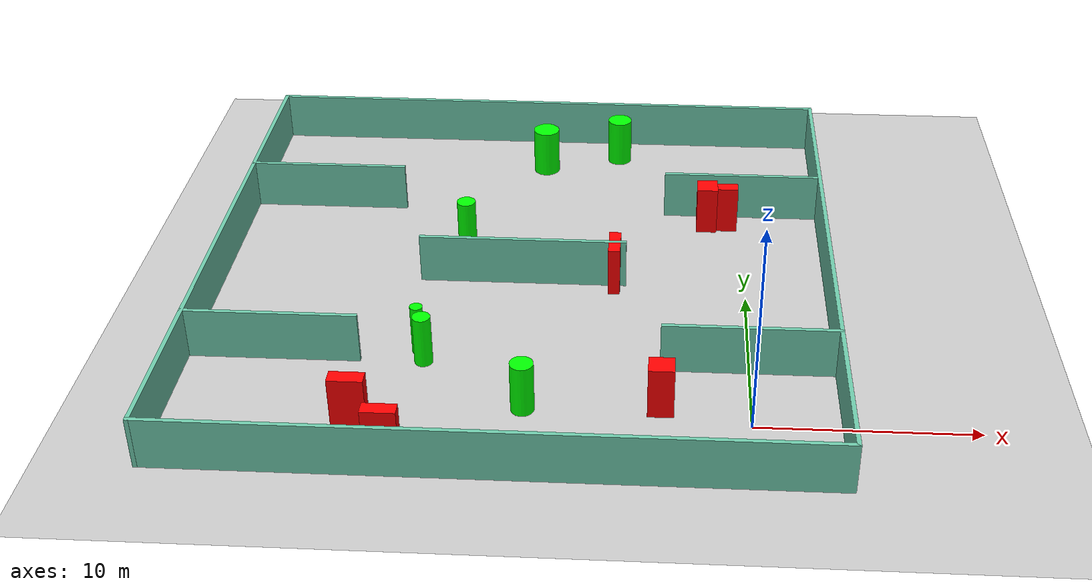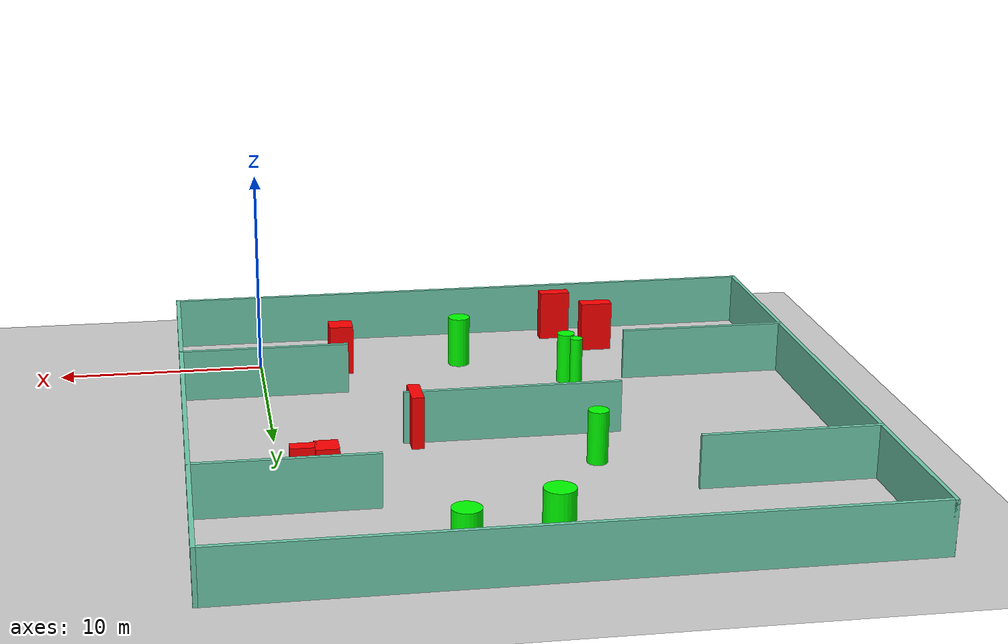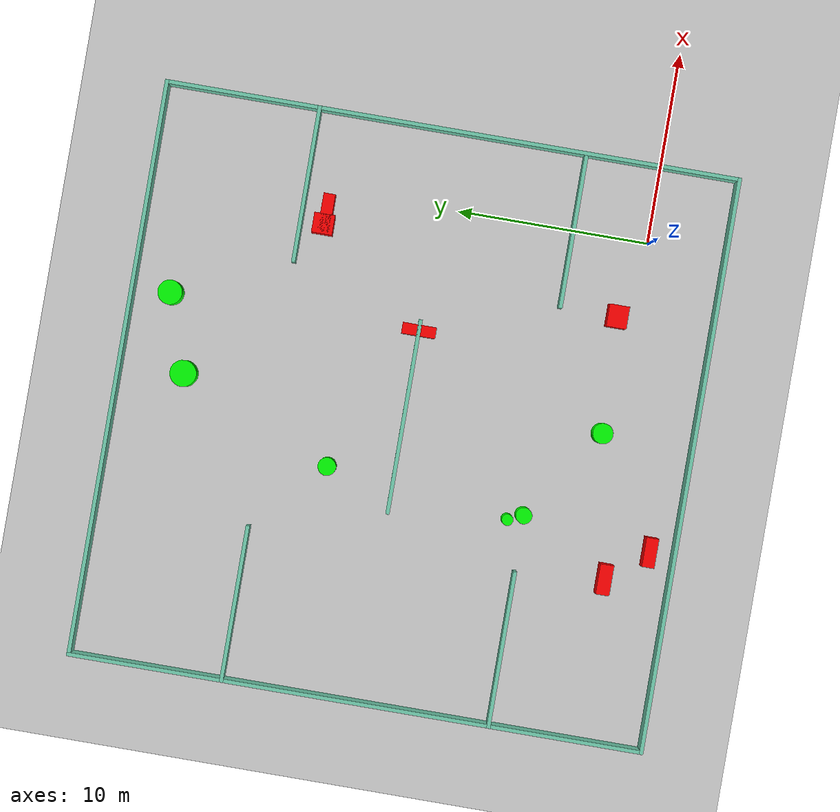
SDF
<sdf version="1.7">
 <world name="default">
  <light name="sun" type="directional">
   <pose>0 0 10 0 -0 0</pose>
   <diffuse>0.8 0.8 0.8 1</diffuse>
   <specular>0.2 0.2 0.2 1</specular>
   <attenuation>
    <range>1000</range>
    <constant>0.9</constant>
    <linear>0.01</linear>
    <quadratic>0.001</quadratic>
   </attenuation>
   <direction>-0.5 0.1 -0.9</direction>
   <spot><inner_angle>0</inner_angle><outer_angle>0</outer_angle><falloff>0</falloff></spot>
  </light>
  <model name="ground_plane">
   <static>1</static>
   <link name="link">
    <collision name="collision">
     <geometry><plane><normal>0 0 1</normal><size>100 100</size></plane></geometry>
     <surface>
      <contact><collide_bitmask>65535</collide_bitmask></contact>
      <friction><ode><mu>100</mu><mu2>50</mu2></ode></friction>
     </surface>
    </collision>
    <visual name="visual">
     <cast_shadows>0</cast_shadows>
     <geometry><plane><normal>0 0 1</normal><size>100 100</size></plane></geometry>
     <material>
      <script><uri>file://media/materials/scripts/gazebo.material</uri><name>Gazebo/Grey</name></script>
     </material>
    </visual>
   </link>
  </model>
  <gravity>0 0 -9.8</gravity>
  <magnetic_field>6e-06 2.3e-05 -4.2e-05</magnetic_field>
  <atmosphere type="adiabatic"/>
  <physics type="ode">
   <max_step_size>0.001</max_step_size>
   <real_time_factor>1</real_time_factor>
   <real_time_update_rate>1000</real_time_update_rate>
  </physics>
  <scene><ambient>0.4 0.4 0.4 1</ambient><background>0.7 0.7 0.7 1</background><shadows>1</shadows></scene>
  <spherical_coordinates>
   <surface_model>EARTH_WGS84</surface_model>
   <latitude_deg>0</latitude_deg>
   <longitude_deg>0</longitude_deg>
   <elevation>0</elevation>
   <heading_deg>0</heading_deg>
  </spherical_coordinates>
  <model name="my_base_walls">
   <link name="Wall_10">
    <collision name="Wall_10_Collision">
     <geometry><box><size>8.2 0.2 2.5</size></box></geometry>
     <pose>0 0 1.25 0 -0 0</pose>
    </collision>
    <visual name="Wall_10_Visual">
     <pose>0 0 1.25 0 -0 0</pose>
     <geometry><box><size>8.2 0.2 2.5</size></box></geometry>
     <material>
      <script><uri>file://media/materials/scripts/gazebo.material</uri><name>Gazebo/Grey</name></script>
      <ambient>0.435294 0.796078 0.67451 1</ambient>
     </material>
     <meta><layer>0</layer></meta>
    </visual>
    <pose>-11 -7 0 0 -0 0</pose>
   </link>
   <link name="Wall_12">
    <collision name="Wall_12_Collision">
     <geometry><box><size>8.2 0.2 2.5</size></box></geometry>
     <pose>0 0 1.25 0 -0 0</pose>
    </collision>
    <visual name="Wall_12_Visual">
     <pose>0 0 1.25 0 -0 0</pose>
     <geometry><box><size>8.2 0.2 2.5</size></box></geometry>
     <material>
      <script><uri>file://media/materials/scripts/gazebo.material</uri><name>Gazebo/Grey</name></script>
      <ambient>0.435294 0.796078 0.67451 1</ambient>
     </material>
     <meta><layer>0</layer></meta>
    </visual>
    <pose>-11 7 0 0 -0 0</pose>
   </link>
   <link name="Wall_14">
    <collision name="Wall_14_Collision">
     <geometry><box><size>8.2 0.2 2.5</size></box></geometry>
     <pose>0 0 1.25 0 -0 0</pose>
    </collision>
    <visual name="Wall_14_Visual">
     <pose>0 0 1.25 0 -0 0</pose>
     <geometry><box><size>8.2 0.2 2.5</size></box></geometry>
     <material>
      <script><uri>file://media/materials/scripts/gazebo.material</uri><name>Gazebo/Grey</name></script>
      <ambient>0.435294 0.796078 0.67451 1</ambient>
     </material>
     <meta><layer>0</layer></meta>
    </visual>
    <pose>11 7 0 0 -0 3.14159</pose>
   </link>
   <link name="Wall_16">
    <collision name="Wall_16_Collision">
     <geometry><box><size>10.2 0.2 2.5</size></box></geometry>
     <pose>0 0 1.25 0 -0 0</pose>
    </collision>
    <visual name="Wall_16_Visual">
     <pose>0 0 1.25 0 -0 0</pose>
     <geometry><box><size>10.2 0.2 2.5</size></box></geometry>
     <material>
      <script><uri>file://media/materials/scripts/gazebo.material</uri><name>Gazebo/Grey</name></script>
      <ambient>0.435294 0.796078 0.67451 1</ambient>
     </material>
     <meta><layer>0</layer></meta>
    </visual>
    <pose>0 0 0 0 -0 3.14159</pose>
   </link>
   <link name="Wall_2">
    <collision name="Wall_2_Collision">
     <geometry><box><size>30.2 0.2 2.5</size></box></geometry>
     <pose>0 0 1.25 0 -0 0</pose>
    </collision>
    <visual name="Wall_2_Visual">
     <pose>0 0 1.25 0 -0 0</pose>
     <geometry><box><size>30.2 0.2 2.5</size></box></geometry>
     <material>
      <script><uri>file://media/materials/scripts/gazebo.material</uri><name>Gazebo/Grey</name></script>
      <ambient>0.435294 0.796078 0.67451 1</ambient>
     </material>
     <meta><layer>0</layer></meta>
    </visual>
    <pose>0 -15 0 0 -0 3.14159</pose>
   </link>
   <link name="Wall_3">
    <collision name="Wall_3_Collision">
     <geometry><box><size>30.2 0.2 2.5</size></box></geometry>
     <pose>0 0 1.25 0 -0 0</pose>
    </collision>
    <visual name="Wall_3_Visual">
     <pose>0 0 1.25 0 -0 0</pose>
     <geometry><box><size>30.2 0.2 2.5</size></box></geometry>
     <material>
      <script><uri>file://media/materials/scripts/gazebo.material</uri><name>Gazebo/Grey</name></script>
      <ambient>0.435294 0.796078 0.67451 1</ambient>
     </material>
     <meta><layer>0</layer></meta>
    </visual>
    <pose>-15 0 0 0 -0 1.5708</pose>
   </link>
   <link name="Wall_4">
    <collision name="Wall_4_Collision">
     <geometry><box><size>30.2 0.2 2.5</size></box></geometry>
     <pose>0 0 1.25 0 -0 0</pose>
    </collision>
    <visual name="Wall_4_Visual">
     <pose>0 0 1.25 0 -0 0</pose>
     <geometry><box><size>30.2 0.2 2.5</size></box></geometry>
     <material>
      <script><uri>file://media/materials/scripts/gazebo.material</uri><name>Gazebo/Grey</name></script>
      <ambient>0.435294 0.796078 0.67451 1</ambient>
     </material>
     <meta><layer>0</layer></meta>
    </visual>
    <pose>0 15 0 0 -0 0</pose>
   </link>
   <link name="Wall_6">
    <collision name="Wall_6_Collision">
     <geometry><box><size>30.2 0.2 2.5</size></box></geometry>
     <pose>0 0 1.25 0 -0 0</pose>
    </collision>
    <visual name="Wall_6_Visual">
     <pose>0 0 1.25 0 -0 0</pose>
     <geometry><box><size>30.2 0.2 2.5</size></box></geometry>
     <material>
      <script><uri>file://media/materials/scripts/gazebo.material</uri><name>Gazebo/Grey</name></script>
      <ambient>0.435294 0.796078 0.67451 1</ambient>
     </material>
     <meta><layer>0</layer></meta>
    </visual>
    <pose>15 0 0 0 -0 1.5708</pose>
   </link>
   <link name="Wall_8">
    <collision name="Wall_8_Collision">
     <geometry><box><size>8.2 0.2 2.5</size></box></geometry>
     <pose>0 0 1.25 0 -0 0</pose>
    </collision>
    <visual name="Wall_8_Visual">
     <pose>0 0 1.25 0 -0 0</pose>
     <geometry><box><size>8.2 0.2 2.5</size></box></geometry>
     <material>
      <script><uri>file://media/materials/scripts/gazebo.material</uri><name>Gazebo/Grey</name></script>
      <ambient>0.435294 0.796078 0.67451 1</ambient>
     </material>
     <meta><layer>0</layer></meta>
    </visual>
    <pose>11 -7 0 0 -0 3.14159</pose>
   </link>
   <static>1</static>
   <pose>-11 11 0 0 -0 0</pose>
  </model>
  <model name="cylinder1">
   <static>1</static>
   <link name="link">
    <inertial>
     <mass>1</mass>
     <inertia><ixx>0.5</ixx><ixy>0</ixy><ixz>0</ixz><iyy>0.5</iyy><iyz>0</iyz><izz>1</izz></inertia>
    </inertial>
    <collision name="collision">
     <geometry><cylinder><radius>0.6378475606039543</radius><length>2.5</length></cylinder></geometry>
    </collision>
    <visual name="visual">
     <geometry><cylinder><radius>0.6378475606039543</radius><length>2.5</length></cylinder></geometry>
     <material>
      <ambient>0 1 0 1</ambient>
      <diffuse>0 1 0 1</diffuse>
      <specular>0.1 0.1 0.1 1</specular>
      <emissive>0 0 0 0</emissive>
     </material>
    </visual>
   </link>
   <pose>-6.699438953427496 24.000568595945076 1.25 0 0 0</pose>
  </model>
  <model name="cylinder2">
   <static>1</static>
   <link name="link">
    <inertial>
     <mass>1</mass>
     <inertia><ixx>0.5</ixx><ixy>0</ixy><ixz>0</ixz><iyy>0.5</iyy><iyz>0</iyz><izz>1</izz></inertia>
    </inertial>
    <collision name="collision">
     <geometry><cylinder><radius>0.4286920083292737</radius><length>2.5</length></cylinder></geometry>
    </collision>
    <visual name="visual">
     <geometry><cylinder><radius>0.4286920083292737</radius><length>2.5</length></cylinder></geometry>
     <material>
      <ambient>0 1 0 1</ambient>
      <diffuse>0 1 0 1</diffuse>
      <specular>0.1 0.1 0.1 1</specular>
      <emissive>0 0 0 0</emissive>
     </material>
    </visual>
   </link>
   <pose>-14.977821207166789 4.03872309180843 1.25 0 0 0</pose>
  </model>
  <model name="cylinder3">
   <static>1</static>
   <link name="link">
    <inertial>
     <mass>1</mass>
     <inertia><ixx>0.5</ixx><ixy>0</ixy><ixz>0</ixz><iyy>0.5</iyy><iyz>0</iyz><izz>1</izz></inertia>
    </inertial>
    <collision name="collision">
     <geometry><cylinder><radius>0.6931620036959308</radius><length>2.5</length></cylinder></geometry>
    </collision>
    <visual name="visual">
     <geometry><cylinder><radius>0.6931620036959308</radius><length>2.5</length></cylinder></geometry>
     <material>
      <ambient>0 1 0 1</ambient>
      <diffuse>0 1 0 1</diffuse>
      <specular>0.1 0.1 0.1 1</specular>
      <emissive>0 0 0 0</emissive>
     </material>
    </visual>
   </link>
   <pose>-10.717864809410964 22.625309584818798 1.25 0 0 0</pose>
  </model>
  <model name="cylinder4">
   <static>1</static>
   <link name="link">
    <inertial>
     <mass>1</mass>
     <inertia><ixx>0.5</ixx><ixy>0</ixy><ixz>0</ixz><iyy>0.5</iyy><iyz>0</iyz><izz>1</izz></inertia>
    </inertial>
    <collision name="collision">
     <geometry><cylinder><radius>0.4728204459430343</radius><length>2.5</length></cylinder></geometry>
    </collision>
    <visual name="visual">
     <geometry><cylinder><radius>0.4728204459430343</radius><length>2.5</length></cylinder></geometry>
     <material>
      <ambient>0 1 0 1</ambient>
      <diffuse>0 1 0 1</diffuse>
      <specular>0.1 0.1 0.1 1</specular>
      <emissive>0 0 0 0</emissive>
     </material>
    </visual>
   </link>
   <pose>-14.199830723383547 14.493324052751202 1.25 0 0 0</pose>
  </model>
  <model name="cylinder5">
   <static>1</static>
   <link name="link">
    <inertial>
     <mass>1</mass>
     <inertia><ixx>0.5</ixx><ixy>0</ixy><ixz>0</ixz><iyy>0.5</iyy><iyz>0</iyz><izz>1</izz></inertia>
    </inertial>
    <collision name="collision">
     <geometry><cylinder><radius>0.300373189682626</radius><length>2.5</length></cylinder></geometry>
    </collision>
    <visual name="visual">
     <geometry><cylinder><radius>0.300373189682626</radius><length>2.5</length></cylinder></geometry>
     <material>
      <ambient>0 1 0 1</ambient>
      <diffuse>0 1 0 1</diffuse>
      <specular>0.1 0.1 0.1 1</specular>
      <emissive>0 0 0 0</emissive>
     </material>
    </visual>
   </link>
   <pose>-15.329299973512853 4.84343769292126 1.25 0 0 0</pose>
  </model>
  <model name="cylinder6">
   <static>1</static>
   <link name="link">
    <inertial>
     <mass>1</mass>
     <inertia><ixx>0.5</ixx><ixy>0</ixy><ixz>0</ixz><iyy>0.5</iyy><iyz>0</iyz><izz>1</izz></inertia>
    </inertial>
    <collision name="collision">
     <geometry><cylinder><radius>0.5370322408057582</radius><length>2.5</length></cylinder></geometry>
    </collision>
    <visual name="visual">
     <geometry><cylinder><radius>0.5370322408057582</radius><length>2.5</length></cylinder></geometry>
     <material>
      <ambient>0 1 0 1</ambient>
      <diffuse>0 1 0 1</diffuse>
      <specular>0.1 0.1 0.1 1</specular>
      <emissive>0 0 0 0</emissive>
     </material>
    </visual>
   </link>
   <pose>-10.111554460390712 0.7350470391239354 1.25 0 0 0</pose>
  </model>
  <model name="box1">
   <static>1</static>
   <link name="link">
    <inertial>
     <mass>1</mass>
     <inertia><ixx>0.083</ixx><ixy>0</ixy><ixz>0</ixz><iyy>0.083</iyy><iyz>0</iyz><izz>0.083</izz></inertia>
    </inertial>
    <collision name="collision">
     <geometry><box><size>1.5906774593398925 0.7120781647065042 2.5</size></box></geometry>
    </collision>
    <visual name="visual">
     <geometry><box><size>1.5906774593398925 0.7120781647065042 2.5</size></box></geometry>
     <material>
      <ambient>1 0 0 1</ambient>
      <diffuse>1 0 0 1</diffuse>
      <specular>0.1 0.1 0.1 1</specular>
      <emissive>0 0 0 0</emissive>
     </material>
    </visual>
    <sensor name="my_contact" type="contact">
     <contact><collision>box_collision</collision><topic>__default_topic__</topic></contact>
    </sensor>
   </link>
   <pose>-17.53319824703268 -0.6371421117633025 1.25 0 0 0</pose>
  </model>
  <model name="box2">
   <static>1</static>
   <link name="link">
    <inertial>
     <mass>1</mass>
     <inertia><ixx>0.083</ixx><ixy>0</ixy><ixz>0</ixz><iyy>0.083</iyy><iyz>0</iyz><izz>0.083</izz></inertia>
    </inertial>
    <collision name="collision">
     <geometry><box><size>0.5805213899245534 1.767038062249092 2.5</size></box></geometry>
    </collision>
    <visual name="visual">
     <geometry><box><size>0.5805213899245534 1.767038062249092 2.5</size></box></geometry>
     <material>
      <ambient>1 0 0 1</ambient>
      <diffuse>1 0 0 1</diffuse>
      <specular>0.1 0.1 0.1 1</specular>
      <emissive>0 0 0 0</emissive>
     </material>
    </visual>
    <sensor name="my_contact" type="contact">
     <contact><collision>box_collision</collision><topic>__default_topic__</topic></contact>
    </sensor>
   </link>
   <pose>-6.469125359265728 10.994930415257818 1.25 0 0 0</pose>
  </model>
  <model name="box3">
   <static>1</static>
   <link name="link">
    <inertial>
     <mass>1</mass>
     <inertia><ixx>0.083</ixx><ixy>0</ixy><ixz>0</ixz><iyy>0.083</iyy><iyz>0</iyz><izz>0.083</izz></inertia>
    </inertial>
    <collision name="collision">
     <geometry><box><size>1.1746279405896125 1.0517523928350776 2.5</size></box></geometry>
    </collision>
    <visual name="visual">
     <geometry><box><size>1.1746279405896125 1.0517523928350776 2.5</size></box></geometry>
     <material>
      <ambient>1 0 0 1</ambient>
      <diffuse>1 0 0 1</diffuse>
      <specular>0.1 0.1 0.1 1</specular>
      <emissive>0 0 0 0</emissive>
     </material>
    </visual>
    <sensor name="my_contact" type="contact">
     <contact><collision>box_collision</collision><topic>__default_topic__</topic></contact>
    </sensor>
   </link>
   <pose>-4.020047672731627 0.9919913688983457 1.25 0 0 0</pose>
  </model>
  <model name="box4">
   <static>1</static>
   <link name="link">
    <inertial>
     <mass>1</mass>
     <inertia><ixx>0.083</ixx><ixy>0</ixy><ixz>0</ixz><iyy>0.083</iyy><iyz>0</iyz><izz>0.083</izz></inertia>
    </inertial>
    <collision name="collision">
     <geometry><box><size>1.5394004989382075 0.6510783071032047 2.5</size></box></geometry>
    </collision>
    <visual name="visual">
     <geometry><box><size>1.5394004989382075 0.6510783071032047 2.5</size></box></geometry>
     <material>
      <ambient>1 0 0 1</ambient>
      <diffuse>1 0 0 1</diffuse>
      <specular>0.1 0.1 0.1 1</specular>
      <emissive>0 0 0 0</emissive>
     </material>
    </visual>
    <sensor name="my_contact" type="contact">
     <contact><collision>box_collision</collision><topic>__default_topic__</topic></contact>
    </sensor>
   </link>
   <pose>-15.762895221505442 -2.722566295645632 1.25 0 0 0</pose>
  </model>
  <model name="box5">
   <static>1</static>
   <link name="link">
    <inertial>
     <mass>1</mass>
     <inertia><ixx>0.083</ixx><ixy>0</ixy><ixz>0</ixz><iyy>0.083</iyy><iyz>0</iyz><izz>0.083</izz></inertia>
    </inertial>
    <collision name="collision">
     <geometry><box><size>1.0425874610205945 1.077106721682985 2.5</size></box></geometry>
    </collision>
    <visual name="visual">
     <geometry><box><size>1.0425874610205945 1.077106721682985 2.5</size></box></geometry>
     <material>
      <ambient>1 0 0 1</ambient>
      <diffuse>1 0 0 1</diffuse>
      <specular>0.1 0.1 0.1 1</specular>
      <emissive>0 0 0 0</emissive>
     </material>
    </visual>
    <sensor name="my_contact" type="contact">
     <contact><collision>box_collision</collision><topic>__default_topic__</topic></contact>
    </sensor>
   </link>
   <pose>-1.873182669974991 16.803723945346977 1.25 0 0 0</pose>
  </model>
  <model name="box6">
   <static>1</static>
   <link name="link">
    <inertial>
     <mass>1</mass>
     <inertia><ixx>0.083</ixx><ixy>0</ixy><ixz>0</ixz><iyy>0.083</iyy><iyz>0</iyz><izz>0.083</izz></inertia>
    </inertial>
    <collision name="collision">
     <geometry><box><size>2.009488625528368 0.61075707917008 2.5</size></box></geometry>
    </collision>
    <visual name="visual">
     <geometry><box><size>2.009488625528368 0.61075707917008 2.5</size></box></geometry>
     <material>
      <ambient>1 0 0 1</ambient>
      <diffuse>1 0 0 1</diffuse>
      <specular>0.1 0.1 0.1 1</specular>
      <emissive>0 0 0 0</emissive>
     </material>
    </visual>
    <sensor name="my_contact" type="contact">
     <contact><collision>box_collision</collision><topic>__default_topic__</topic></contact>
    </sensor>
   </link>
   <pose>-1.2943936000278136 16.73463013207444 1.25 0 0 0</pose>
  </model>
 </world>
</sdf>
